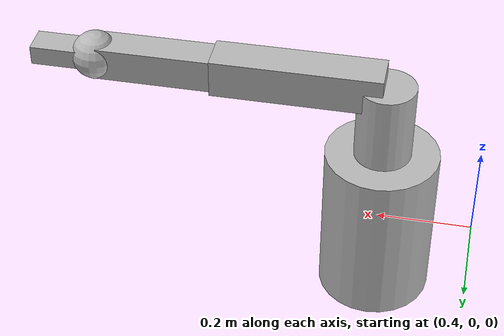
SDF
<?xml version="1.0"?>
<sdf version="1.9">
  <model name="arm_1">
    <static>true</static>
    <pose>0.6 0 0 0 0 0</pose>

    <!-- ========= pedestal / base ========= -->
    <link name="pedestal">
      <inertial>
        <mass>30.0</mass>
        <inertia>
          <ixx>2.0</ixx><iyy>2.0</iyy><izz>2.0</izz>
        </inertia>
      </inertial>

      <collision name="col">
        <geometry>
          <cylinder>
            <radius>0.12</radius>
            <length>0.35</length>
          </cylinder>
        </geometry>
      </collision>

      <visual name="vis">
        <geometry>
          <cylinder>
            <radius>0.12</radius>
            <length>0.35</length>
          </cylinder>
        </geometry>
      </visual>
    </link>

    <!-- ========= link1 (shoulder) ========= -->
    <link name="link1">
      <pose>0 0 0.22 0 0 0</pose>
      <inertial>
        <mass>5.0</mass>
        <inertia>
          <ixx>0.1</ixx><iyy>0.1</iyy><izz>0.1</izz>
        </inertia>
      </inertial>
      <collision name="col">
        <geometry>
          <cylinder>
            <radius>0.06</radius>
            <length>0.25</length>
          </cylinder>
        </geometry>
      </collision>
      <visual name="vis">
        <geometry>
          <cylinder>
            <radius>0.06</radius>
            <length>0.25</length>
          </cylinder>
        </geometry>
      </visual>
    </link>

    <!-- ========= link2 (upper arm) ========= -->
    <link name="link2">
      <pose>0.18 0 0.34 0 0 0</pose>
      <inertial>
        <mass>4.0</mass>
        <inertia>
          <ixx>0.08</ixx><iyy>0.08</iyy><izz>0.08</izz>
        </inertia>
      </inertial>

      <collision name="col">
        <geometry>
          <box><size>0.35 0.08 0.08</size></box>
        </geometry>
      </collision>

      <visual name="vis">
        <geometry>
          <box><size>0.35 0.08 0.08</size></box>
        </geometry>
      </visual>
    </link>

    <!-- ========= link3 (forearm) ========= -->
    <link name="link3">
      <pose>0.45 0 0.34 0 0 0</pose>
      <inertial>
        <mass>3.0</mass>
        <inertia>
          <ixx>0.05</ixx><iyy>0.05</iyy><izz>0.05</izz>
        </inertia>
      </inertial>

      <collision name="col">
        <geometry>
          <box><size>0.28 0.07 0.07</size></box>
        </geometry>
      </collision>

      <visual name="vis">
        <geometry>
          <box><size>0.28 0.07 0.07</size></box>
        </geometry>
      </visual>
    </link>

    <!-- ========= wrist ========= -->
    <link name="wrist">
      <pose>0.60 0 0.34 0 0 0</pose>
      <inertial>
        <mass>1.5</mass>
        <inertia>
          <ixx>0.02</ixx><iyy>0.02</iyy><izz>0.02</izz>
        </inertia>
      </inertial>

      <collision name="col">
        <geometry>
          <sphere><radius>0.05</radius></sphere>
        </geometry>
      </collision>

      <visual name="vis">
        <geometry>
          <sphere><radius>0.05</radius></sphere>
        </geometry>
      </visual>
    </link>

    <!-- ========= gripper (simple) ========= -->
    <link name="gripper">
      <pose>0.68 0 0.34 0 0 0</pose>
      <inertial>
        <mass>1.0</mass>
        <inertia>
          <ixx>0.01</ixx><iyy>0.01</iyy><izz>0.01</izz>
        </inertia>
      </inertial>

      <collision name="col">
        <geometry>
          <box><size>0.10 0.06 0.04</size></box>
        </geometry>
      </collision>

      <visual name="vis">
        <geometry>
          <box><size>0.10 0.06 0.04</size></box>
        </geometry>
      </visual>
    </link>

    <!-- ========= joints ========= -->
    <!-- base yaw -->
    <joint name="j1_base_yaw" type="revolute">
      <parent>pedestal</parent>
      <child>link1</child>
      <pose>0 0 0.18 0 0 0</pose>
      <axis>
        <xyz>0 0 1</xyz>
        <limit><lower>-3.14</lower><upper>3.14</upper></limit>
      </axis>
    </joint>

    <!-- shoulder pitch -->
    <joint name="j2_shoulder" type="revolute">
      <parent>link1</parent>
      <child>link2</child>
      <pose>0 0 0.34 0 0 0</pose>
      <axis>
        <xyz>0 1 0</xyz>
        <limit><lower>-1.57</lower><upper>1.57</upper></limit>
      </axis>
    </joint>

    <!-- elbow pitch -->
    <joint name="j3_elbow" type="revolute">
      <parent>link2</parent>
      <child>link3</child>
      <pose>0.35 0 0.34 0 0 0</pose>
      <axis>
        <xyz>0 1 0</xyz>
        <limit><lower>-2.2</lower><upper>2.2</upper></limit>
      </axis>
    </joint>

    <!-- wrist pitch -->
    <joint name="j4_wrist" type="revolute">
      <parent>link3</parent>
      <child>wrist</child>
      <pose>0.28 0 0 0 0 0</pose>
      <axis>
        <xyz>0 1 0</xyz>
        <limit><lower>-2.2</lower><upper>2.2</upper></limit>
      </axis>
    </joint>

    <!-- gripper (simple open/close as prismatic) -->
    <joint name="j5_gripper" type="prismatic">
      <parent>wrist</parent>
      <child>gripper</child>
      <axis>
        <xyz>1 0 0</xyz>
        <limit><lower>0</lower><upper>0.08</upper></limit>
      </axis>
    </joint>

  </model>
</sdf>
